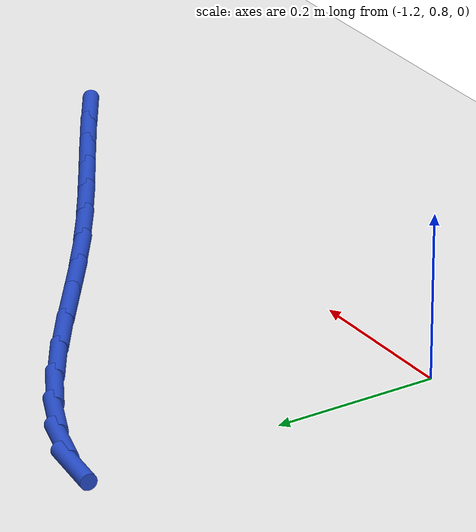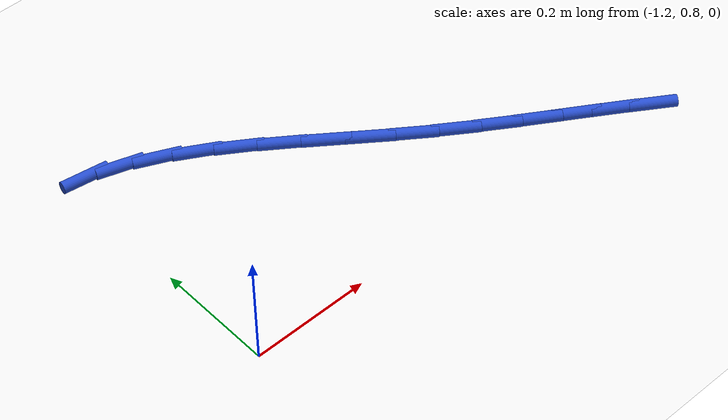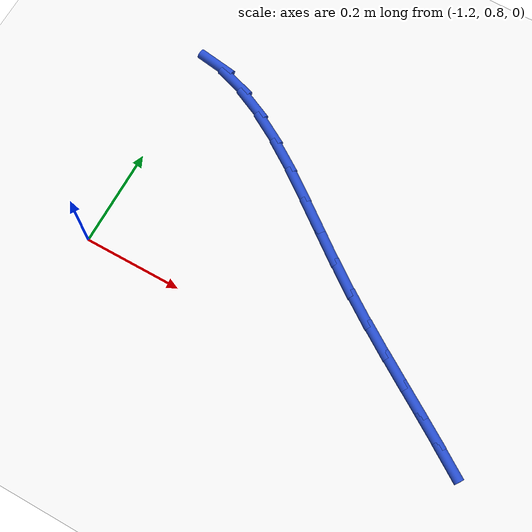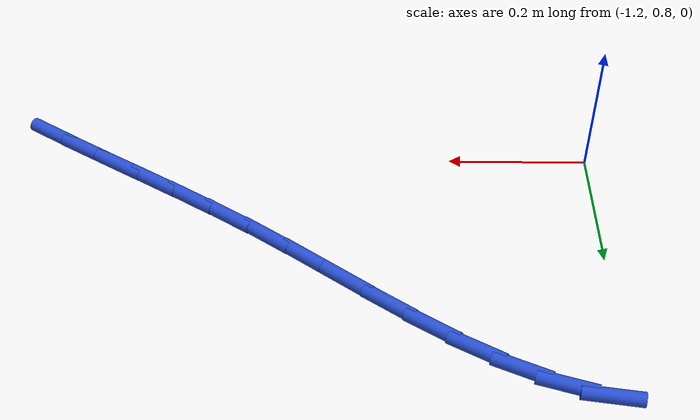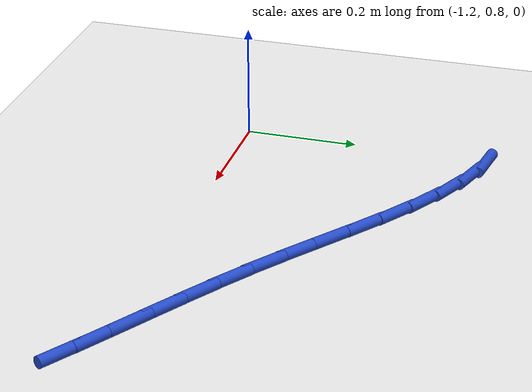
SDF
<sdf version="1.6">
 <world name="default">
  <model name="ground_plane">
   <static>1</static>
   <link name="link">
    <collision name="collision">
     <geometry><plane><normal>0 0 1</normal><size>100 100</size></plane></geometry>
     <surface><friction><ode><mu>100</mu><mu2>50</mu2></ode></friction></surface>
    </collision>
    <visual name="visual">
     <cast_shadows>0</cast_shadows>
     <geometry><plane><normal>0 0 1</normal><size>100 100</size></plane></geometry>
     <material>
      <script><uri>file://media/materials/scripts/gazebo.material</uri><name>Gazebo/WhiteGlow</name></script>
     </material>
    </visual>
   </link>
  </model>
  <model name="line">
   <link name="link_15">
    <pose>-0.41127232792430257 0.7558665905880317 0.01 0 1.57 -0.5787849875361306</pose>
    <collision name="collision">
     <geometry><cylinder><radius>0.01</radius><length>0.08</length></cylinder></geometry>
    </collision>
    <visual name="visual">
     <material>
      <script><name>Gazebo/Blue</name><uri>file://media/materials/scripts/gazebo.material</uri></script>
     </material>
     <geometry><cylinder><radius>0.01</radius><length>0.08</length></cylinder></geometry>
    </visual>
   </link>
   <link name="link_16">
    <pose>-0.4628674913773978 0.7895805873635935 0.01 0 1.57 -0.5650770404697665</pose>
    <collision name="collision">
     <geometry><cylinder><radius>0.01</radius><length>0.08</length></cylinder></geometry>
    </collision>
    <visual name="visual">
     <material>
      <script><name>Gazebo/Blue</name><uri>file://media/materials/scripts/gazebo.material</uri></script>
     </material>
     <geometry><cylinder><radius>0.01</radius><length>0.08</length></cylinder></geometry>
    </visual>
   </link>
   <link name="link_17">
    <pose>-0.515927800084287 0.8232232018687905 0.01 0 1.57 -0.5611960147242319</pose>
    <collision name="collision">
     <geometry><cylinder><radius>0.01</radius><length>0.08</length></cylinder></geometry>
    </collision>
    <visual name="visual">
     <material>
      <script><name>Gazebo/Blue</name><uri>file://media/materials/scripts/gazebo.material</uri></script>
     </material>
     <geometry><cylinder><radius>0.01</radius><length>0.08</length></cylinder></geometry>
    </visual>
   </link>
   <link name="link_18">
    <pose>-0.5701229875525585 0.8572912133269294 0.01 0 1.57 -0.5666038727382114</pose>
    <collision name="collision">
     <geometry><cylinder><radius>0.01</radius><length>0.08</length></cylinder></geometry>
    </collision>
    <visual name="visual">
     <material>
      <script><name>Gazebo/Blue</name><uri>file://media/materials/scripts/gazebo.material</uri></script>
     </material>
     <geometry><cylinder><radius>0.01</radius><length>0.08</length></cylinder></geometry>
    </visual>
   </link>
   <link name="link_19">
    <pose>-0.6251227872898009 0.8922814009613167 0.01 0 1.57 -0.5808097133526645</pose>
    <collision name="collision">
     <geometry><cylinder><radius>0.01</radius><length>0.08</length></cylinder></geometry>
    </collision>
    <visual name="visual">
     <material>
      <script><name>Gazebo/Blue</name><uri>file://media/materials/scripts/gazebo.material</uri></script>
     </material>
     <geometry><cylinder><radius>0.01</radius><length>0.08</length></cylinder></geometry>
    </visual>
   </link>
   <link name="link_20">
    <pose>-0.6805969328036025 0.9286905439952593 0.01 0 1.57 -0.6033530009064795</pose>
    <collision name="collision">
     <geometry><cylinder><radius>0.01</radius><length>0.08</length></cylinder></geometry>
    </collision>
    <visual name="visual">
     <material>
      <script><name>Gazebo/Blue</name><uri>file://media/materials/scripts/gazebo.material</uri></script>
     </material>
     <geometry><cylinder><radius>0.01</radius><length>0.08</length></cylinder></geometry>
    </visual>
   </link>
   <link name="link_21">
    <pose>-0.7362151576015517 0.9670154216520639 0.01 0 1.57 -0.6312739227067878</pose>
    <collision name="collision">
     <geometry><cylinder><radius>0.01</radius><length>0.08</length></cylinder></geometry>
    </collision>
    <visual name="visual">
     <material>
      <script><name>Gazebo/Blue</name><uri>file://media/materials/scripts/gazebo.material</uri></script>
     </material>
     <geometry><cylinder><radius>0.01</radius><length>0.08</length></cylinder></geometry>
    </visual>
   </link>
   <link name="link_22">
    <pose>-0.7916785136254506 1.007562889489563 0.01 0 1.57 -0.6477763745397916</pose>
    <collision name="collision">
     <geometry><cylinder><radius>0.01</radius><length>0.08</length></cylinder></geometry>
    </collision>
    <visual name="visual">
     <material>
      <script><name>Gazebo/Blue</name><uri>file://media/materials/scripts/gazebo.material</uri></script>
     </material>
     <geometry><cylinder><radius>0.01</radius><length>0.08</length></cylinder></geometry>
    </visual>
   </link>
   <link name="link_23">
    <pose>-0.8469007943512661 1.0493496794377075 0.01 0 1.57 -0.6466203526846199</pose>
    <collision name="collision">
     <geometry><cylinder><radius>0.01</radius><length>0.08</length></cylinder></geometry>
    </collision>
    <visual name="visual">
     <material>
      <script><name>Gazebo/Blue</name><uri>file://media/materials/scripts/gazebo.material</uri></script>
     </material>
     <geometry><cylinder><radius>0.01</radius><length>0.08</length></cylinder></geometry>
    </visual>
   </link>
   <link name="link_24">
    <pose>-0.9018842818781494 1.0908559038894277 0.01 0 1.57 -0.6274547961046605</pose>
    <collision name="collision">
     <geometry><cylinder><radius>0.01</radius><length>0.08</length></cylinder></geometry>
    </collision>
    <visual name="visual">
     <material>
      <script><name>Gazebo/Blue</name><uri>file://media/materials/scripts/gazebo.material</uri></script>
     </material>
     <geometry><cylinder><radius>0.01</radius><length>0.08</length></cylinder></geometry>
    </visual>
   </link>
   <link name="link_25">
    <pose>-0.9566315480604389 1.1305599180818842 0.01 0 1.57 -0.5884818399351256</pose>
    <collision name="collision">
     <geometry><cylinder><radius>0.01</radius><length>0.08</length></cylinder></geometry>
    </collision>
    <visual name="visual">
     <material>
      <script><name>Gazebo/Blue</name><uri>file://media/materials/scripts/gazebo.material</uri></script>
     </material>
     <geometry><cylinder><radius>0.01</radius><length>0.08</length></cylinder></geometry>
    </visual>
   </link>
   <link name="link_26">
    <pose>-1.0111451647524734 1.1669400772522396 0.01 0 1.57 -0.5262835989263114</pose>
    <collision name="collision">
     <geometry><cylinder><radius>0.01</radius><length>0.08</length></cylinder></geometry>
    </collision>
    <visual name="visual">
     <material>
      <script><name>Gazebo/Blue</name><uri>file://media/materials/scripts/gazebo.material</uri></script>
     </material>
     <geometry><cylinder><radius>0.01</radius><length>0.08</length></cylinder></geometry>
    </visual>
   </link>
   <link name="link_27">
    <pose>-1.0654277038085913 1.1984747366376562 0.01 0 1.57 -0.4357502348360802</pose>
    <collision name="collision">
     <geometry><cylinder><radius>0.01</radius><length>0.08</length></cylinder></geometry>
    </collision>
    <visual name="visual">
     <material>
      <script><name>Gazebo/Blue</name><uri>file://media/materials/scripts/gazebo.material</uri></script>
     </material>
     <geometry><cylinder><radius>0.01</radius><length>0.08</length></cylinder></geometry>
    </visual>
   </link>
   <link name="link_28">
    <pose>-1.1194817370831316 1.2236422514752954 0.01 0 1.57 -0.31060820352307505</pose>
    <collision name="collision">
     <geometry><cylinder><radius>0.01</radius><length>0.08</length></cylinder></geometry>
    </collision>
    <visual name="visual">
     <material>
      <script><name>Gazebo/Blue</name><uri>file://media/materials/scripts/gazebo.material</uri></script>
     </material>
     <geometry><cylinder><radius>0.01</radius><length>0.08</length></cylinder></geometry>
    </visual>
   </link>
   <link name="link_29">
    <pose>-1.1733098364304329 1.24092097700232 0.01 0 1.57 -0.1457427608220346</pose>
    <collision name="collision">
     <geometry><cylinder><radius>0.01</radius><length>0.08</length></cylinder></geometry>
    </collision>
    <visual name="visual">
     <material>
      <script><name>Gazebo/Blue</name><uri>file://media/materials/scripts/gazebo.material</uri></script>
     </material>
     <geometry><cylinder><radius>0.01</radius><length>0.08</length></cylinder></geometry>
    </visual>
   </link>
  </model>
 </world>
</sdf>
